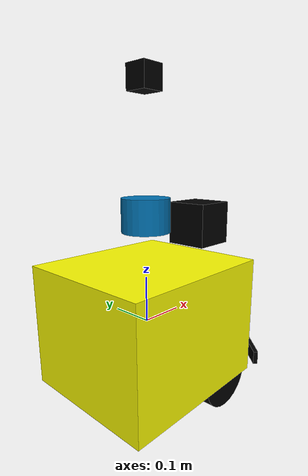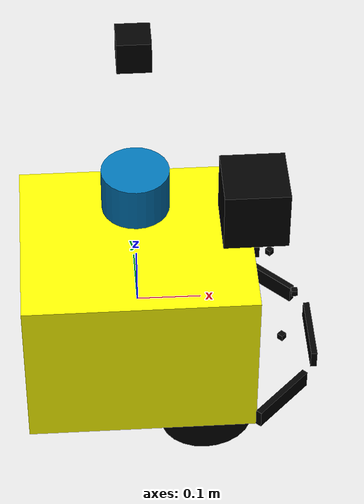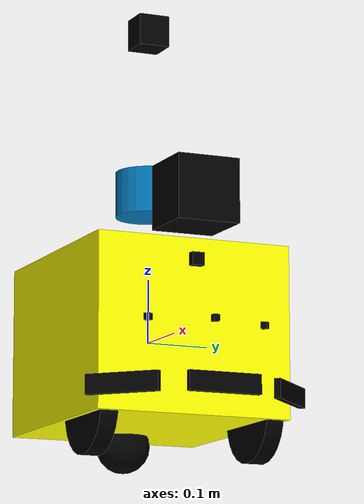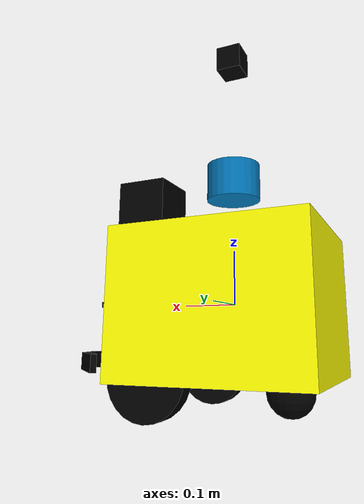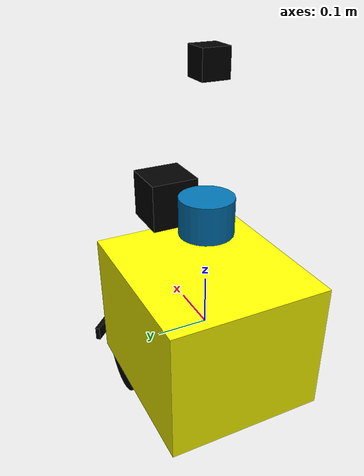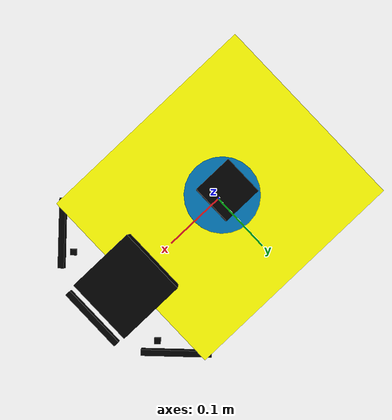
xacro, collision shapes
<?xml version="1.0" encoding="UTF-8"?>
<robot xmlns:xacro="http://www.ros.org/wiki/xacro" name="plato_robot">
    <xacro:include filename="$(find plato_description)/urdf/plato_gazebo.xacro"/>
    <xacro:include filename="$(find plato_description)/urdf/parameters.xacro"/>
    <xacro:include filename="$(find plato_description)/urdf/utils.xacro"/>
    <xacro:include filename="$(find plato_description)/urdf/materials.xacro"/>
    <xacro:include filename="$(find plato_description)/urdf/body_parts/body_box.urdf.xacro"/>
    <xacro:include filename="$(find plato_description)/urdf/body_parts/wheel.urdf.xacro"/>
    <xacro:include filename="$(find plato_description)/urdf/body_parts/caster_wheel.urdf.xacro"/>
    <xacro:include filename="$(find plato_description)/urdf/sensors/VLP-16.urdf.xacro"/>
    <xacro:include filename="$(find plato_description)/urdf/sensors/camera.urdf.xacro"/>
    <xacro:include filename="$(find plato_description)/urdf/sensors/hokuyo.urdf.xacro"/>
    <xacro:include filename="$(find plato_description)/urdf/sensors/imu.urdf.xacro"/>
    <xacro:include filename="$(find plato_description)/urdf/sensors/bumper.urdf.xacro"/>
    <xacro:include filename="$(find plato_description)/urdf/sensors/sonar.urdf.xacro"/>

    <body_box name="${base_name}" M="${M}" length_x="${length_x}"
                                  color="${color_base}"
                                  length_y="${length_y}"
                                  length_z="${length_z}">
       <origin xyz="0 0 0" rpy=" 0 0 0"/>
    </body_box>

    <wheel parent="${base_name}" name="left_wheel" wheel_radius="${wheel_radius}"
                            color="${color_wheel}"
                            wheel_width="${wheel_width}"
                            wheel_mass="${wheel_mass}"
                            wheel_effort_limit="${wheel_effort_limit}"
                            wheel_velocity_limit="${wheel_velocity_limit}">
       <origin xyz="${wheel_position_x}
                    ${wheel_distance/2}
                    ${caster_position_z + wheel_radius - caster_radius}"
                    rpy="0 0 0"/>
    </wheel>

    <wheel parent="${base_name}" name="right_wheel" wheel_radius="${wheel_radius}"
                            color="${color_wheel}"
                            wheel_width="${wheel_width}"
                            wheel_mass="${wheel_mass}"
                            wheel_effort_limit="${wheel_effort_limit}"
                            wheel_velocity_limit="${wheel_velocity_limit}">
      <origin xyz="${wheel_position_x}
                   ${-wheel_distance/2}
                   ${caster_position_z + wheel_radius - caster_radius}"
                   rpy="0 0 0"/>
    </wheel>

    <caster_wheel parent="${base_name}" name="caster_wheel"
                  color="${color_caster_wheel}"
                  caster_mass="${caster_mass}"
                  caster_radius="${caster_radius}">
      <origin xyz="${caster_position_x}
                   ${caster_position_y}
                   ${caster_position_z}" rpy="0 0 0"/>
    </caster_wheel>

    <VLP-16 parent="${base_name}" name="velodyne" topic="/velodyne_points"
            hz="${v16_hz}" samples="${v16_samples}">
      <origin xyz="${v16_pos_x} ${v16_pos_y} ${v16_pos_z}" rpy="0 0 0" />
    </VLP-16>

    <camera_sensor xyz="${camera_pos_x} ${camera_pos_y} ${camera_pos_z}"
                   rpy="0 0 0" parent="${base_name}"
                   color="${color_camera}" name= "camera1" topic="plato/camera1">
    </camera_sensor>

    <hokuyo_sensor xyz="${hokuyo_pos_x} ${hokuyo_pos_y} ${hokuyo_pos_z}"
                   rpy="0 0 0" parent="${base_name}"
                   color="${color_lidar}">
    </hokuyo_sensor>

    <imu_sensor xyz="${imu_pos_x} ${imu_pos_y} ${imu_pos_z}"
                rpy="0 0 0" parent="${base_name}"
                color="${color_imu}">
    </imu_sensor>

    <bumper parent="${base_name}" name="center_bumper"
            topic="center_bumper" col_num="3"
            color="${color_bumper}">
      <origin xyz="0.28 0 -0.1" rpy="0 0 0" />
    </bumper>

    <bumper parent="${base_name}" name="right_bumper"
            topic="right_bumper" col_num="9"
            color="${color_bumper}">
      <origin xyz="0.22 ${-wheel_distance/2} -0.1" rpy="0 0 ${-M_PI/4}" />
    </bumper>

    <bumper parent="${base_name}" name="left_bumper"
            topic="left_bumper" col_num="7"
            color="${color_bumper}">
      <origin xyz="0.22 ${wheel_distance/2} -0.1" rpy="0 0 ${M_PI/4}" />
    </bumper>

    <sonar_sensor parent="${base_name}" name="center_sonar"
                  color="${color_sonar}"
                  ros_topic="/center_sonar"
                  update_rate="10" min_range="0.3" max_range="2"
                  field_of_view="56" ray_count="2" >
      <origin xyz="0.25 0 0" rpy="0 0 0" />
    </sonar_sensor>

    <sonar_sensor parent="${base_name}" name="left_sonar"
                  color="${color_sonar}"
                  ros_topic="/left_sonar"
                  update_rate="10" min_range="0.3" max_range="2"
                  field_of_view="56" ray_count="2" >
      <origin xyz="0.22 ${(-wheel_distance/2)+0.04} 0" rpy="0 0 ${-M_PI/4}"/>
    </sonar_sensor>

    <sonar_sensor parent="${base_name}" name="right_sonar"
                  color="${color_sonar}"
                  ros_topic="/right_sonar"
                  update_rate="10" min_range="0.3" max_range="2"
                  field_of_view="56" ray_count="2" >
      <origin xyz="0.22 ${(wheel_distance/2)-0.04} 0" rpy="0 0 ${M_PI/4}"/>
    </sonar_sensor>

</robot>

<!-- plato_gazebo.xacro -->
<robot xmlns:xacro="http://www.ros.org/wiki/xacro" name="plato_robot">
<xacro:include filename="$(find plato_description)/urdf/parameters.xacro"/>
    <gazebo>
        <plugin name="differential_drive_controller" filename="libgazebo_ros_diff_drive.so" >
            <commandTopic>${command_topic_name}</commandTopic>
            <odometryTopic>${odometry_topic_name}</odometryTopic>
            <odometryFrame>${odometry_topic_name}</odometryFrame>
            <robotBaseFrame>${base_name}</robotBaseFrame>
            <publishWheelTF>true</publishWheelTF>
            <publishWheelJointState>true</publishWheelJointState>
            <legacyMode>false</legacyMode>
            <wheelSeparation>${wheel_distance}</wheelSeparation>
            <wheelDiameter>${wheel_radius*2}</wheelDiameter>
            <wheelAcceleration>${wheel_acceleration_gazebo}</wheelAcceleration>
            <wheelTorque>${wheel_torque_gazebo}</wheelTorque>
            <updateRate>${update_rate_gazebo}</updateRate>
            <leftJoint>${left_wheel_joint_name}</leftJoint>
            <rightJoint>${right_wheel_joint_name}</rightJoint>
            <publishTf>1</publishTf>
        </plugin>
    </gazebo>

    <gazebo reference="chassis">
        <material>Gazebo/Yellow</material>
    </gazebo>
    <gazebo reference="left_wheel">
        <material>Gazebo/Black</material>
    </gazebo>
    <gazebo reference="right_wheel">
        <material>Gazebo/Black</material>
    </gazebo>
    <gazebo reference="caster_wheel">
        <material>Gazebo/Black</material>
    </gazebo>
    <gazebo reference="center_bumper">
        <material>Gazebo/Black</material>
    </gazebo>
    <gazebo reference="left_bumper">
        <material>Gazebo/Black</material>
    </gazebo>
    <gazebo reference="right_bumper">
        <material>Gazebo/Black</material>
    </gazebo>

</robot>

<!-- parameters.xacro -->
<robot xmlns:xacro="http://www.ros.org/wiki/xacro" name="plato_robot">

  <!-- Chassis properties -->
  <xacro:property name="base_name" value="chassis"/>
  <xacro:property name="M" value="5"/>
  <xacro:property name="length_x" value="0.357"/>
  <xacro:property name="length_y" value="0.313"/>
  <xacro:property name="length_z" value="0.267"/>
  <!-- Differential-drive wheels properties -->
  <xacro:property name="wheel_radius" value="0.0715"/>
  <xacro:property name="wheel_width" value="0.028"/>
  <xacro:property name="wheel_mass" value="0.1"/>
  <xacro:property name="wheel_position_x" value="0.1"/>
  <xacro:property name="wheel_distance" value="0.27"/>
  <xacro:property name="wheel_effort_limit" value="5"/>
  <xacro:property name="wheel_velocity_limit" value="10"/>
  <!-- Caster wheel properties -->
  <xacro:property name="caster_mass" value="0.1"/>
  <xacro:property name="caster_radius" value="0.0425"/>
  <xacro:property name="caster_position_x" value="-0.1"/>
  <xacro:property name="caster_position_y" value="0"/>
  <xacro:property name="caster_position_z" value="-0.15"/>
  <!-- Velodyne16 properties -->
  <xacro:property name="v16_pos_x" value="0"/>
  <xacro:property name="v16_pos_y" value="0"/>
  <xacro:property name="v16_pos_z" value="0.2"/>
  <xacro:property name="v16_hz" value="10"/>
  <xacro:property name="v16_samples" value="440"/>
  <!-- Camera properties -->
  <xacro:property name="camera_res_width" value="600"/>
  <xacro:property name="camera_res_height" value="400"/>
  <xacro:property name="camera_size" value="0.05"/>
  <xacro:property name="camera_mass" value="0.1"/>
  <xacro:property name="camera_pos_x" value="0"/>
  <xacro:property name="camera_pos_y" value="0"/>
  <xacro:property name="camera_pos_z" value="0.5"/>
  <!-- Hokuyo properties -->
  <xacro:property name="hokuyo_pos_x" value="0.18"/>
  <xacro:property name="hokuyo_pos_y" value="0"/>
  <xacro:property name="hokuyo_pos_z" value="0.2"/>
  <!-- IMU properties -->
  <xacro:property name="imu_pos_x" value="0.18"/>
  <xacro:property name="imu_pos_y" value="0"/>
  <xacro:property name="imu_pos_z" value="0.1"/>
  <!-- Topic names -->
  <xacro:property name="command_topic_name" value="cmd_vel"/>
  <xacro:property name="odometry_topic_name" value="odom"/>
  <!-- Joint_names -->
  <xacro:property name="left_wheel_joint_name" value="left_wheel_hinge"/>
  <xacro:property name="right_wheel_joint_name" value="right_wheel_hinge"/>
  <!-- Gazebo parameters -->
  <xacro:property name="wheel_torque_gazebo" value="2"/>
  <xacro:property name="wheel_acceleration_gazebo" value="1"/>
  <xacro:property name="update_rate_gazebo" value="20"/>
  <!-- Colors parameters -->
  <xacro:property name="color_base" value="Plato/Yellow"/>
  <xacro:property name="color_wheel" value="Plato/Black"/>
  <xacro:property name="color_caster_wheel" value="Plato/Black"/>
  <xacro:property name="color_bumper" value="Plato/Black"/>
  <xacro:property name="color_sonar" value="Plato/Black"/>
  <xacro:property name="color_camera" value="Plato/Black"/>
  <xacro:property name="color_imu" value="Plato/Black"/>
  <xacro:property name="color_lidar" value="Plato/Black"/>

</robot>

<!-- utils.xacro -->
<robot xmlns:xacro="http://www.ros.org/wiki/xacro">
  <xacro:property name="M_PI" value="3.1415926535897931" />

  <xacro:macro name="cylinder_inertia" params="m r h">
  <inertia  ixx="${m*(3*r*r+h*h)/12}" ixy = "0" ixz = "0"
            iyy="${m*(3*r*r+h*h)/12}" iyz = "0"
            izz="${m*r*r/2}" />
  </xacro:macro>

  <xacro:macro name="parallelepiped_inertia" params="m x_dim y_dim z_dim">
  <inertia  ixx="${(1/3) * m * (z_dim*z_dim + y_dim*y_dim)}" ixy="0" ixz="0"
            iyy="${(1/3) * m * (z_dim*z_dim + x_dim*x_dim)}" iyz="0"
            izz="${(1/3) * m * (x_dim*x_dim + y_dim*y_dim)}"/>
  </xacro:macro>

  <xacro:macro name="sphere_inertia" params="m r">
  <inertia ixx="${(2/5) * m * r * r}" ixy="0" ixz="0"
           iyy="${(2/5) * m * r * r}" iyz="0"
           izz="${(2/5) * m * r * r}"/>
  </xacro:macro>

</robot>

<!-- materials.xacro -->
<robot name="materials">

    <material name="Plato/Black">
        <color rgba="0.0 0.0 0.0 1.0"/>
    </material>

    <material name="Plato/Blue">
        <color rgba="0.0 0.0 0.8 1.0"/>
    </material>

    <material name="Plato/Yellow">
        <color rgba="1 1 0 1.0"/>
    </material>

    <material name="Plato/Green">
        <color rgba="0.0 0.8 0.0 1.0"/>
    </material>

    <material name="Plato/Grey">
        <color rgba="0.2 0.2 0.2 1.0"/>
    </material>

    <material name="Plato/Orange">
        <color rgba="${255/255} ${108/255} ${10/255} 1.0"/>
    </material>

    <material name="Plato/Brown">
        <color rgba="${222/255} ${207/255} ${195/255} 1.0"/>
    </material>

    <material name="Plato/Red">
        <color rgba="0.8 0.0 0.0 1.0"/>
    </material>

    <material name="Plato/White">
        <color rgba="1.0 1.0 1.0 1.0"/>
    </material>

</robot>

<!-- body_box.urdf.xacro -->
<robot xmlns:xacro="http://www.ros.org/wiki/xacro">
  <xacro:macro name="body_box" params="name color M *origin length_x length_y length_z">

    <link name="${name}">
        <inertial>
            <mass value="${M}"/>
            <xacro:insert_block name="origin" />
            <parallelepiped_inertia m="${M}" x_dim="${length_x}"
                                  y_dim="${length_y}"
                                  z_dim="${length_z}"/>
        </inertial>
        <collision name="${name}_collision">
            <geometry>
                <box size="${length_x}
                           ${length_y}
                           ${length_z}"/>
            </geometry>
        </collision>
        <visual name="${name}_visual">
            <xacro:insert_block name="origin" />
            <geometry>
                <box size="${length_x}
                           ${length_y}
                           ${length_z}"/>
            </geometry>
            <material name="${color}"/>
        </visual>
    </link>

  </xacro:macro>
</robot>

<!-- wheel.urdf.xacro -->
<robot xmlns:xacro="http://www.ros.org/wiki/xacro">
  <xacro:macro name="wheel" params="name color parent *origin wheel_radius wheel_width wheel_mass wheel_effort_limit wheel_velocity_limit">

    <link name="${name}">
        <collision name="${name}_collision">
            <origin xyz="0 0 0" rpy="0 1.5707 1.5707"/>
            <geometry>
                <cylinder radius="${wheel_radius}" length="${wheel_width}"/>
            </geometry>
        </collision>
        <visual name="${name}_visual">
            <origin xyz="0 0 0" rpy="0 1.5707 1.5707"/>
            <geometry>
                <cylinder radius="${wheel_radius}" length="${wheel_width}"/>
            </geometry>
            <material name="${color}"/>
        </visual>
        <inertial>
            <origin xyz="0 0 0" rpy="0 1.5707 1.5707"/>
            <mass value="${wheel_mass}"/>
            <cylinder_inertia m="${wheel_mass}" r="${wheel_radius}" h="${wheel_width}"/>
        </inertial>
    </link>

    <joint name="${name}_hinge" type="continuous">
        <xacro:insert_block name="origin" />
        <parent link="${parent}"/>
        <child link="${name}"/>
        <axis xyz="0 1 0"/>
        <limit effort="${wheel_effort_limit}" velocity="${wheel_velocity_limit}"/>
        <joint_properties damping="0.0" friction="0.0"/>
    </joint>

    <gazebo reference="${name}">
      <mu1 value="1.0"/>
      <mu2 value="1.0"/>
      <kp  value="10000.0" />
      <kd>100.0</kd>
      <minDepth>0.0001</minDepth>
      <maxVel>1.0</maxVel>

      <material>Gazebo/FlatBlack</material>
    </gazebo>

  </xacro:macro>
</robot>

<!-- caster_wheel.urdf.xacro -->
<robot xmlns:xacro="http://www.ros.org/wiki/xacro">
  <xacro:macro name="caster_wheel" params="name parent color *origin caster_mass caster_radius">

    <link name="${name}">
      <inertial>
          <mass value="${caster_mass}"/>
          <origin xyz="0 0 0" rpy=" 0 0 0"/>
          <sphere_inertia m="${caster_mass}" r="${caster_radius}"/>
      </inertial>
      <collision name="${name}_collision">
          <origin xyz="0 0 0" rpy=" 0 0 0"/>
          <geometry>
              <sphere radius="${caster_radius}"/>
          </geometry>
      </collision>
      <visual name="${name}_visual">
          <origin xyz="0 0 0" rpy=" 0 0 0"/>
          <geometry>
              <sphere radius="${caster_radius}"/>
          </geometry>
          <material name="${color}"/>
      </visual>
    </link>

    <joint name="${name}_joint" type="fixed">
        <parent link="${parent}"/>
        <child link="${name}"/>
        <xacro:insert_block name="origin" />
    </joint>

    <gazebo reference="${name}">
      <mu1>0.0</mu1>
      <mu2>0.0</mu2>

      <kp>100000000.0</kp>
      <kd>1.0</kd>
      <minDepth>0.0001</minDepth>
      <maxVel>1.0</maxVel>

    </gazebo>

  </xacro:macro>
</robot>

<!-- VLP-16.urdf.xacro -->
<robot xmlns:xacro="http://www.ros.org/wiki/xacro" name="VLP-16">
  <xacro:property name="M_PI" value="3.1415926535897931" />
  <xacro:macro name="VLP-16" params="*origin parent:=base_link name:=velodyne topic:=/velodyne_points hz:=10 lasers:=16 samples:=1875 collision_range:=0.3 min_range:=0.9 max_range:=130.0 noise:=0.008 min_angle:=-${M_PI} max_angle:=${M_PI}">

    <joint name="${name}_base_mount_joint" type="fixed">
      <xacro:insert_block name="origin" />
      <parent link="${parent}"/>
      <child link="${name}_base_link"/>
    </joint>

    <link name="${name}_base_link">
      <inertial>
        <mass value="0.83"/>
        <origin xyz="0 0 0.03585"/>
        <inertia ixx="${(0.83 * (3.0*0.0516*0.0516 + 0.0717*0.0717)) / 12.0}" ixy="0" ixz="0"          iyy="${(0.83 * (3.0*0.0516*0.0516 + 0.0717*0.0717)) / 12.0}" iyz="0"          izz="${0.5 * 0.83 * (0.0516*0.0516)}"/>
      </inertial>
      <visual>
        <geometry>
          <mesh filename="package://plato_description/meshes/VLP16_base_1.dae" />
        </geometry>
      </visual>
      <visual>
        <geometry>
          <mesh filename="package://plato_description/meshes/VLP16_base_2.dae" />
        </geometry>
      </visual>
      <collision>
        <origin rpy="0 0 0" xyz="0 0 0.03585"/>
        <geometry>
          <cylinder radius="0.0516" length="0.0717"/>
        </geometry>
      </collision>
    </link>

    <joint name="${name}_base_scan_joint" type="fixed" >
      <origin xyz="0 0 0.0377" rpy="0 0 0" />
      <parent link="${name}_base_link" />
      <child link="${name}"/>
    </joint>

    <link name="${name}">
      <inertial>
        <mass value="0.01"/>
        <origin xyz="0 0 0"/>
        <inertia ixx="1e-7" ixy="0" ixz="0" iyy="1e-7" iyz="0" izz="1e-7"/>
      </inertial>
      <visual>
        <origin xyz="0 0 -0.0377" />
        <geometry>
          <mesh filename="package://plato_description/meshes/VLP16_scan.dae" />
        </geometry>
      </visual>
    </link>

    <!-- Gazebo requires the velodyne_gazebo_plugins package -->
    <gazebo reference="${name}">
      <sensor type="ray" name="${name}-VLP16">
        <pose>0 0 0 0 0 0</pose>
        <visualize>false</visualize>
        <update_rate>${hz}</update_rate>
        <ray>
          <scan>
            <horizontal>
              <samples>${samples}</samples>
              <resolution>1</resolution>
              <min_angle>${min_angle}</min_angle>
              <max_angle>${max_angle}</max_angle>
            </horizontal>
            <vertical>
              <samples>${lasers}</samples>
              <resolution>1</resolution>
              <min_angle>-${15.0*M_PI/180.0}</min_angle>
              <max_angle> ${15.0*M_PI/180.0}</max_angle>
            </vertical>
          </scan>
          <range>
            <min>${collision_range}</min>
            <max>${max_range+1}</max>
            <resolution>0.001</resolution>
          </range>
          <noise>
            <type>gaussian</type>
            <mean>0.0</mean>
            <stddev>0.0</stddev>
          </noise>
        </ray>
        <plugin name="gazebo_ros_laser_controller" filename="libgazebo_ros_velodyne_laser.so">
          <topicName>${topic}</topicName>
          <frameName>${name}</frameName>
          <min_range>${min_range}</min_range>
          <max_range>${max_range}</max_range>
          <gaussianNoise>${noise}</gaussianNoise>
        </plugin>
      </sensor>
    </gazebo>
  </xacro:macro>
</robot>

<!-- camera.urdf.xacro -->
<robot xmlns:xacro="http://www.ros.org/wiki/xacro" name="camera">
    <xacro:include filename="$(find plato_description)/urdf/parameters.xacro"/>

    <xacro:macro name="camera_sensor" params="xyz rpy color parent name topic">

        <joint name="${name}_joint" type="fixed">
            <axis xyz="0 1 0"/>
            <origin xyz="${xyz}" rpy="${rpy}"/>
            <parent link="${parent}"/>
            <child link="${name}"/>
        </joint>

        <link name="${name}">
            <collision>
                <origin xyz="0 0 0" rpy="0 0 0"/>
                <geometry>
                    <box size="${camera_size} ${camera_size} ${camera_size}"/>
                </geometry>
            </collision>
            <visual>
                <origin xyz="0 0 0" rpy="0 0 0"/>
                <geometry>
                    <box size="${camera_size} ${camera_size} ${camera_size}"/>
                </geometry>
                <material name="${color}"/>
            </visual>
            <inertial>
                <mass value="${camera_mass}"/>
                <origin xyz="0 0 0" rpy="0 0 0"/>
                <box_inertia m="${camera_mass}" x="${camera_size}" y="${camera_size}" z="${camera_size}"/>
                <inertia ixx="1e-6" ixy="0" ixz="0" iyy="1e-6" iyz="0" izz="1e-6"/>
            </inertial>
        </link>

        <gazebo reference="${name}">
            <material>Plato/Green</material>
            <sensor type="camera" name="${name}_sensor">
                <update_rate>60.0</update_rate>
                <camera name="head">
                    <horizontal_fov>1.3962634</horizontal_fov>
                    <image>
                        <width>${camera_res_width}</width>
                        <height>${camera_res_height}</height>
                        <format>R8G8B8</format>
                    </image>
                    <clip>
                        <near>0.02</near>
                        <far>300</far>
                    </clip>
                </camera>
                <plugin name="camera_controller" filename="libgazebo_ros_camera.so">
                    <alwaysOn>true</alwaysOn>
                    <updateRate>0.0</updateRate>
                    <cameraName>${topic}</cameraName>
                    <imageTopicName>image_raw</imageTopicName>
                    <cameraInfoTopicName>camera_info</cameraInfoTopicName>
                    <frameName>camera</frameName>
                    <hackBaseline>0.07</hackBaseline>
                    <distortionK1>0.0</distortionK1>
                    <distortionK2>0.0</distortionK2>
                    <distortionK3>0.0</distortionK3>
                    <distortionT1>0.0</distortionT1>
                    <distortionT2>0.0</distortionT2>
                </plugin>
            </sensor>
        </gazebo>

    </xacro:macro>

</robot>

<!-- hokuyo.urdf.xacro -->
<robot xmlns:xacro="http://www.ros.org/wiki/xacro" name="hokuyo">

    <xacro:macro name="hokuyo_sensor" params="xyz rpy color parent">

        <joint name="hokuyo_joint" type="fixed">
            <axis xyz="0 1 0"/>
            <origin xyz="${xyz}" rpy="${rpy}"/>
            <parent link="${parent}"/>
            <child link="hokuyo"/>
        </joint>

        <link name="hokuyo">
            <collision>
                <origin xyz="0 0 0" rpy="0 0 0"/>
                <geometry>
                    <box size="0.1 0.1 0.1"/>
                </geometry>
            </collision>
            <visual>
                <origin xyz="0 0 0" rpy="0 0 0"/>
                <geometry>
                    <mesh filename="package://plato_description/meshes/hokuyo.dae"/>
                </geometry>
                <material name="${color}"/>
            </visual>
            <inertial>
                <mass value="1e-5"/>
                <origin xyz="0 0 0" rpy="0 0 0"/>
                <inertia ixx="1e-6" ixy="0" ixz="0" iyy="1e-6" iyz="0" izz="1e-6"/>
            </inertial>
        </link>

        <gazebo reference="hokuyo">
            <sensor type="ray" name="head_hokuyo_sensor">
                <pose>0 0 0 0 0 0</pose>
                <visualize>true</visualize>
                <update_rate>40</update_rate>
                <ray>
                    <scan>
                        <horizontal>
                            <samples>720</samples>
                            <resolution>1</resolution>
                            <min_angle>-1.570796</min_angle>
                            <max_angle>1.570796</max_angle>
                        </horizontal>
                    </scan>
                    <range>
                        <min>0.10</min>
                        <max>30.0</max>
                        <resolution>0.01</resolution>
                    </range>
                    <noise>
                        <type>gaussian</type>
                        <mean>0.0</mean>
                        <stddev>0.01</stddev>
                    </noise>
                </ray>
                <plugin name="gazebo_ros_head_hokuyo_controller" filename="libgazebo_ros_laser.so">
                    <topicName>scan</topicName>
                    <frameName>hokuyo</frameName>
                </plugin>
            </sensor>
        </gazebo>

    </xacro:macro>

</robot>

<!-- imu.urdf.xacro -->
<robot xmlns:xacro="http://www.ros.org/wiki/xacro" name="plato">

    <xacro:macro name="imu_sensor" params="xyz rpy color parent">
        <joint name="imu_sensor_joint" type="fixed">
            <axis xyz="0 0 1"/>
            <origin xyz="${xyz}" rpy="${rpy}"/>
            <parent link="${parent}"/>
            <child link="imu_sensor_link"/>
        </joint>

        <link name="imu_sensor_link">
            <collision>
                <origin xyz="0 0 0" rpy="0 0 0"/>
                <geometry>
                    <box size="0.02 0.02 0.02"/>
                </geometry>
            </collision>
            <visual>
                <origin xyz="0 0 0" rpy="0 0 0"/>
                <geometry>
                    <box size="0.02 0.02 0.02"/>
                </geometry>
                <material name="${color}"/>
            </visual>
            <inertial>
                <mass value="0.001"/>
                <origin xyz="0 0 0" rpy="0 0 0"/>
                <inertia ixx="0.00000015" ixy="0" ixz="0" iyy="0.00000015" iyz="0" izz="0.00000015"/>
            </inertial>
        </link>

        <gazebo reference="imu_sensor_link">
            <gravity>true</gravity>
            <sensor name="imu_sensor" type="imu">
                <always_on>true</always_on>
                <update_rate>100</update_rate>
                <visualize>true</visualize>
                <topic>__default_topic__</topic>
                <plugin filename="libgazebo_ros_imu_sensor.so" name="imu_plugin">
                    <topicName>plato/imu_data</topicName>
                    <bodyName>imu_link</bodyName>
                    <updateRateHZ>10.0</updateRateHZ>
                    <gaussianNoise>0.0</gaussianNoise>
                    <xyzOffset>0 0 0</xyzOffset>
                    <rpyOffset>0 0 0</rpyOffset>
                    <frameName>imu_sensor_link</frameName>
                </plugin>
                <pose>0 0 0 0 0 0</pose>
            </sensor>
        </gazebo>

    </xacro:macro>

</robot>

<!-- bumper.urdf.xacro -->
<robot xmlns:xacro="http://www.ros.org/wiki/xacro" name="bumper">
  <xacro:macro name="bumper" params="*origin color name:=bumper parent:=base_link topic:=/bumper_value col_num:=3" >

    <joint name="${name}_base_joint" type="fixed">
      <xacro:insert_block name="origin" />
      <parent link="${parent}"/>
      <child link="${name}"/>
    </joint>

    <link name="${name}">
      <inertial>
        <mass value="0.01" />
        <inertia ixx="0.01" ixy="0.0" ixz="0.0" iyy="0.01" iyz="0.0" izz="0.01" />
      </inertial>
      <visual>
        <origin xyz="0 0 0" rpy="0 0 0" />
        <geometry>
          <box size="0.01 0.115 0.03"/>
        </geometry>
        <material name="${color}"/>
      </visual>
      <collision name="${name}">
        <origin xyz="0 0 0" rpy="0 0 0" />
        <geometry>
          <box size="0.01 0.115 0.03"/>
        </geometry>
      </collision>
    </link>

    <gazebo reference="${name}">
      <selfCollide>false</selfCollide>
      <sensor type="contact" name="${name}_collision_sensor">
        <always_on>true</always_on>
        <update_rate>30.0</update_rate>
        <contact>
          <collision>${parent}_fixed_joint_lump__${name}_collision_${col_num}</collision>
        </contact>
        <plugin name="${name}_gazebo_ros_bumper_controller" filename="libgazebo_ros_bumper.so">
          <bumperTopicName>${topic}</bumperTopicName>
          <frameName>${name}</frameName>
        </plugin>
      </sensor>
    </gazebo>
  </xacro:macro>
</robot>

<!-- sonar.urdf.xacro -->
<robot xmlns:xacro="http://www.ros.org/wiki/xacro">
  <xacro:macro name="sonar_sensor" params="name color parent *origin ros_topic update_rate min_range max_range field_of_view ray_count">
    <joint name="${name}_joint" type="fixed">
      <xacro:insert_block name="origin" />
      <parent link="${parent}"/>
      <child link="${name}_link"/>
    </joint>

    <link name="${name}_link">
      <inertial>
        <mass value="0.001" />
        <origin xyz="0 0 0" rpy="0 0 0" />
        <inertia ixx="0.000000017" ixy="0" ixz="0" iyy="0.000000017" iyz="0" izz="0.000000017" />
      </inertial>
      <visual>
        <origin xyz="0 0 0" rpy="0 0 0" />
        <geometry>
          <mesh filename="package://plato_description/meshes/max_sonar_ez4.dae"/>
        </geometry>
        <material name="${color}"/>
      </visual>
      <collision>
        <origin xyz="0 0 0" rpy="0 0 0" />
        <geometry>
          <box size="0.01 0.01 0.01" />
        </geometry>
      </collision>
    </link>

    <gazebo reference="${name}_link">
      <sensor type="ray" name="${name}">
        <always_on>true</always_on>
        <update_rate>${update_rate}</update_rate>
        <pose>0 0 0 0 0 0</pose>
        <visualize>false</visualize>
        <ray>
          <scan>
            <horizontal>
              <samples>${ray_count}</samples>
              <resolution>1</resolution>
              <min_angle>-${field_of_view/2}</min_angle>
              <max_angle> ${field_of_view/2}</max_angle>
            </horizontal>
            <vertical>
              <samples>${ray_count}</samples>
              <resolution>1</resolution>
              <min_angle>-${field_of_view/2}</min_angle>
              <max_angle> ${field_of_view/2}</max_angle>
            </vertical>
          </scan>
          <range>
            <min>${min_range}</min>
            <max>${max_range}</max>
            <resolution>0.01</resolution>
          </range>
        </ray>
        <plugin name="gazebo_ros_${name}_controller" filename="libhector_gazebo_ros_sonar.so">
          <gaussianNoise>0.005</gaussianNoise>
          <topicName>${ros_topic}</topicName>
          <frameId>${name}_link</frameId>
        </plugin>
      </sensor>
    </gazebo>
  </xacro:macro>
</robot>
